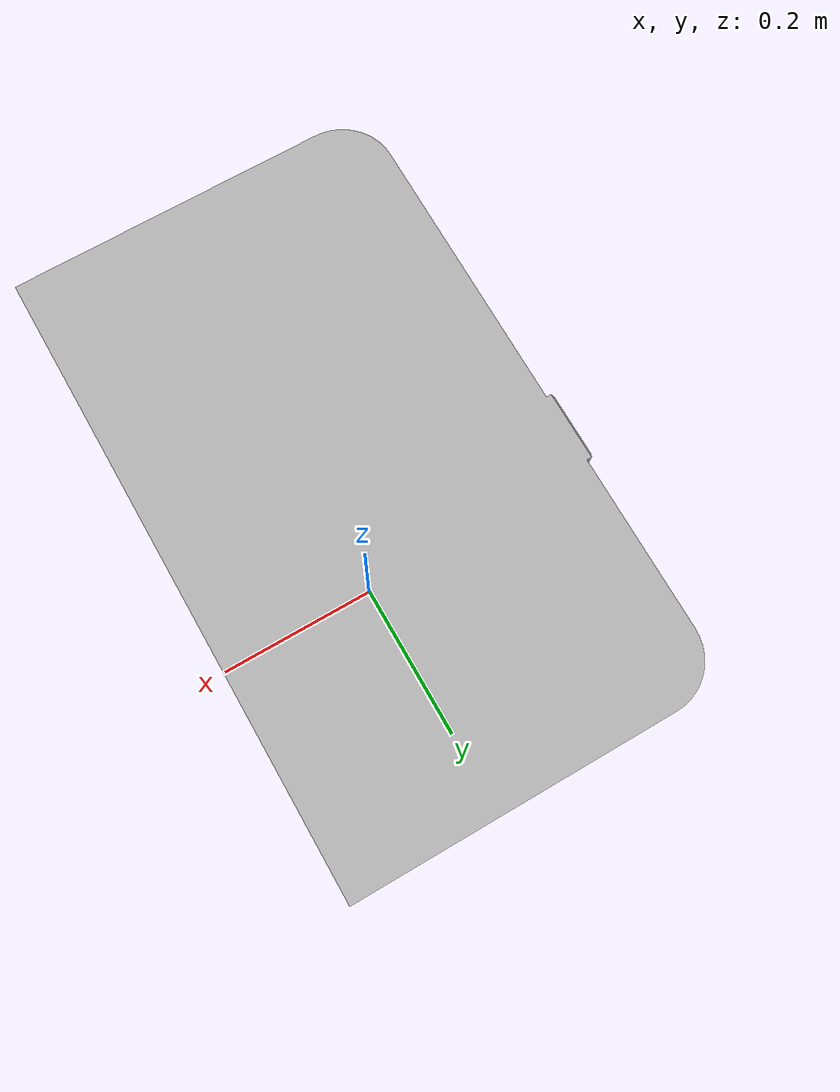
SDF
<?xml version="1.0"?>
<sdf version="1.5">
  <model name="PSA_Charger">
    <link name="link">
      <pose>0 0 0 0 0 3.14159</pose>
      <inertial>
        <pose>0 0 0.2 0 0 0</pose>
        <mass>20.0</mass>
	  <inertia>
	    <ixx>0.9536133</ixx>
	    <ixy>0.0</ixy>
	    <ixz>0.0</ixz>
	    <iyy>0.5711376</iyy>
	    <iyz>0.0</iyz>
	    <izz>0.8255376</izz>
	  </inertia>
      </inertial>
      <collision name="collision">
        <pose>0 0 0 0 0 0</pose>
        <geometry>
          <mesh>
            <uri>model://PSA_Charger/meshes/Trial_ChargerUnit_07.STL</uri>
          </mesh>
        </geometry>
      </collision>
      <visual name="visual">
        <pose>0 0 0 0 0 0</pose>
        <geometry>
          <mesh>
            <uri>model://PSA_Charger/meshes/Trial_ChargerUnit_07.STL</uri>
          </mesh>
        </geometry>
      </visual>
    </link>
  </model>
</sdf>
